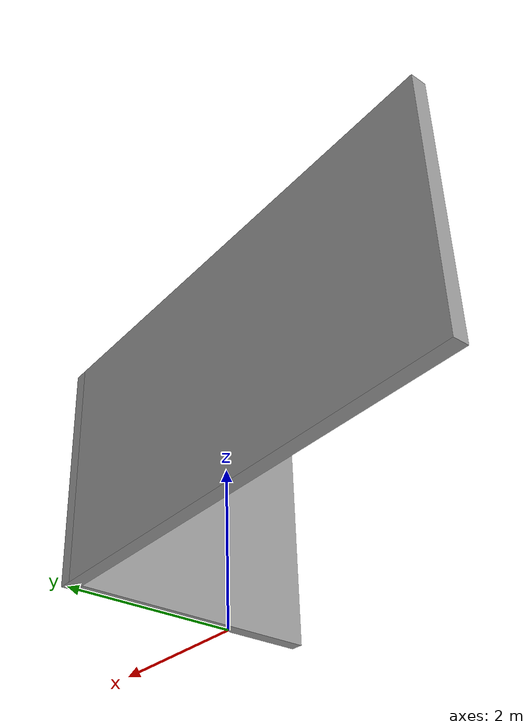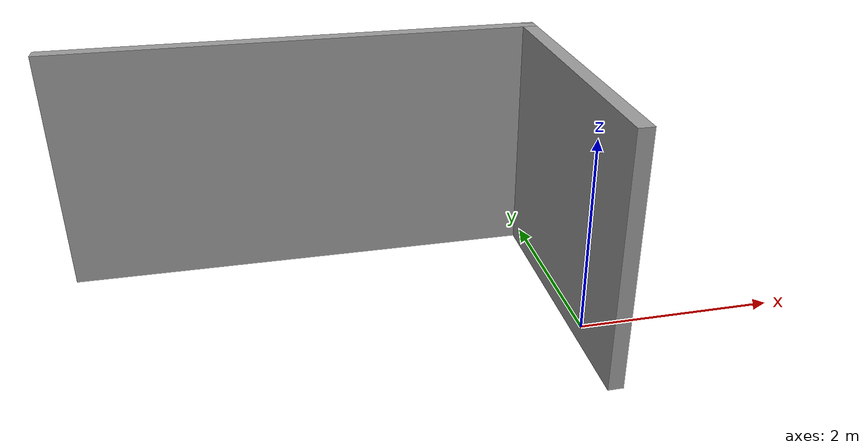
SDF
<?xml version='1.0'?>
<sdf version='1.7'>
  <model name='wall_Lshape_2'>
    <pose>-2.46393 0.547013 0 0 -0 0</pose>
    <link name='Wall_3'>
      <collision name='Wall_3_Collision'>
        <geometry>
          <box>
            <size>5 0.15 2.5</size>
          </box>
        </geometry>
        <pose>0 0 1.25 0 -0 0</pose>
      </collision>
      <visual name='Wall_3_Visual'>
        <pose>0 0 1.25 0 -0 0</pose>
        <geometry>
          <box>
            <size>5 0.15 2.5</size>
          </box>
        </geometry>
        <material>
          <script>
            <uri>file://media/materials/scripts/gazebo.material</uri>
            <name>Gazebo/Grey</name>
          </script>
          <ambient>1 1 1 1</ambient>
        </material>
        <meta>
          <layer>0</layer>
        </meta>
      </visual>
      <pose>-0 1.425 0 0 -0 3.14159</pose>
    </link>
    <link name='Wall_5'>
      <collision name='Wall_5_Collision'>
        <geometry>
          <box>
            <size>3 0.15 2.5</size>
          </box>
        </geometry>
        <pose>0 0 1.25 0 -0 0</pose>
      </collision>
      <visual name='Wall_5_Visual'>
        <pose>0 0 1.25 0 -0 0</pose>
        <geometry>
          <box>
            <size>3 0.15 2.5</size>
          </box>
        </geometry>
        <material>
          <script>
            <uri>file://media/materials/scripts/gazebo.material</uri>
            <name>Gazebo/Grey</name>
          </script>
          <ambient>1 1 1 1</ambient>
        </material>
        <meta>
          <layer>0</layer>
        </meta>
      </visual>
      <pose>2.425 0 0 0 -0 -1.5708</pose>
    </link>
    <static>1</static>
  </model>
</sdf>
